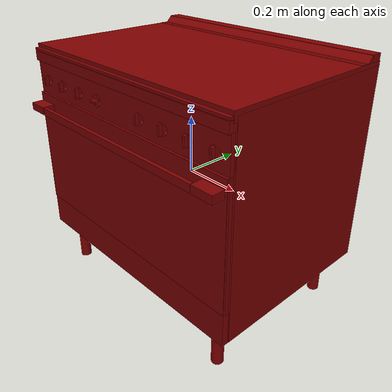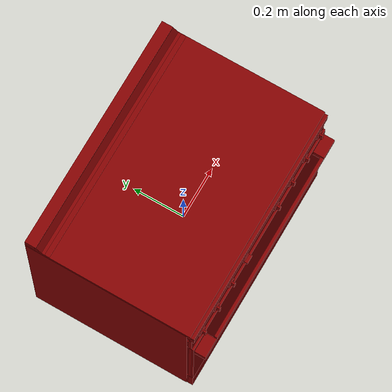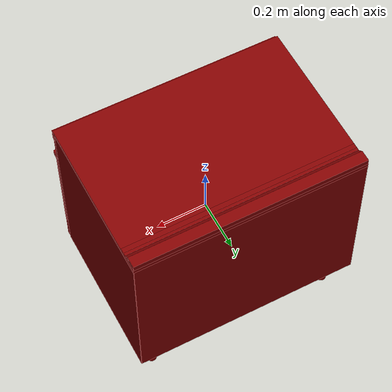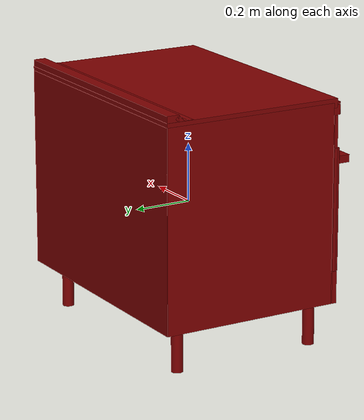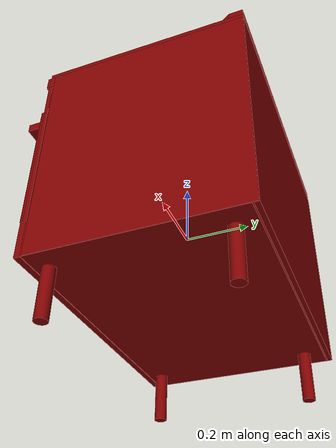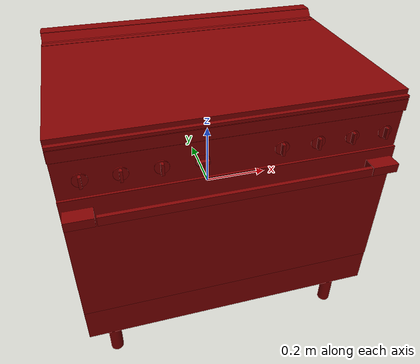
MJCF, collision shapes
<?xml version='1.0' encoding='UTF-8'?>
<mujoco model="model">
  <option timestep="0.002" gravity="0.0 0.0 -9.81"/>
  <compiler angle="radian"/>
  <asset>
    <mesh file="visuals/door.obj" name="door_vis"/>
    <mesh file="visuals/door_Clear.obj" name="door_Clear_vis"/>
    <mesh file="visuals/knob_front_center.obj" name="knob_front_center_vis"/>
    <mesh file="visuals/knob_front_left.obj" name="knob_front_left_vis"/>
    <mesh file="visuals/knob_front_right.obj" name="knob_front_right_vis"/>
    <mesh file="visuals/knob_rear_center.obj" name="knob_rear_center_vis"/>
    <mesh file="visuals/knob_rear_left.obj" name="knob_rear_left_vis"/>
    <mesh file="visuals/knob_rear_right.obj" name="knob_rear_right_vis"/>
    <mesh file="visuals/knob_temp.obj" name="knob_temp_vis"/>
    <mesh file="visuals/knob_time.obj" name="knob_time_vis"/>
    <mesh file="visuals/rack0.obj" name="rack0_vis"/>
    <mesh file="visuals/Body001.obj" name="Body001_vis"/>
    <texture file="visuals/T_BC001.png" name="Body001_material" type="2d"/>
    <material name="Body001_material" rgba="1 1 1 1.0" texture="Body001_material" shininess="0.1" specular="4"/>
    <texture file="visuals/T_BC001.png" name="door_material" type="2d"/>
    <material name="door_material" rgba="1 1 1 1.0" texture="door_material" shininess="0.1" specular="4"/>
    <texture file="visuals/T_BC001.png" name="door_Clear_material" type="2d"/>
    <material name="door_Clear_material" rgba="1 1 1 0.8" texture="door_Clear_material" shininess="0.1" specular="0.3103448502657381"/>
    <texture file="visuals/T_BC001.png" name="knob_front_center_material" type="2d"/>
    <material name="knob_front_center_material" rgba="1 1 1 1.0" texture="knob_front_center_material" shininess="0.1" specular="4"/>
    <texture file="visuals/T_BC001.png" name="knob_front_left_material" type="2d"/>
    <material name="knob_front_left_material" rgba="1 1 1 1.0" texture="knob_front_left_material" shininess="0.1" specular="4"/>
    <texture file="visuals/T_BC001.png" name="knob_front_right_material" type="2d"/>
    <material name="knob_front_right_material" rgba="1 1 1 1.0" texture="knob_front_right_material" shininess="0.1" specular="4"/>
    <texture file="visuals/T_BC001.png" name="knob_rear_center_material" type="2d"/>
    <material name="knob_rear_center_material" rgba="1 1 1 1.0" texture="knob_rear_center_material" shininess="0.1" specular="4"/>
    <texture file="visuals/T_BC001.png" name="knob_rear_left_material" type="2d"/>
    <material name="knob_rear_left_material" rgba="1 1 1 1.0" texture="knob_rear_left_material" shininess="0.1" specular="4"/>
    <texture file="visuals/T_BC001.png" name="knob_rear_right_material" type="2d"/>
    <material name="knob_rear_right_material" rgba="1 1 1 1.0" texture="knob_rear_right_material" shininess="0.1" specular="4"/>
    <texture file="visuals/T_BC001.png" name="knob_temp_material" type="2d"/>
    <material name="knob_temp_material" rgba="1 1 1 1.0" texture="knob_temp_material" shininess="0.1" specular="4"/>
    <texture file="visuals/T_BC001.png" name="knob_time_material" type="2d"/>
    <material name="knob_time_material" rgba="1 1 1 1.0" texture="knob_time_material" shininess="0.1" specular="4"/>
    <texture file="visuals/T_BC001.png" name="rack0_material" type="2d"/>
    <material name="rack0_material" rgba="1 1 1 1.0" texture="rack0_material" shininess="0.1" specular="4"/>
  </asset>
  <default>
    <default class="visual">
      <geom conaffinity="0" contype="0" group="1" type="mesh"/>
    </default>
    <default class="collision">
      <geom group="0" rgba="0.5 0 0 0.5"/>
    </default>
    <default class="spawn">
      <geom group="0" rgba="1 1 1 0.5" contype="0" conaffinity="0"/>
      <site group="0" rgba="1 1 1 0.5"/>
    </default>
    <default class="region">
      <geom group="1" conaffinity="0" contype="0" rgba="0 1 0 0"/>
    </default>
  </default>
  <worldbody>
    <body>
      <body name="object">
        <geom mesh="Body001_vis" type="mesh" solimp="0.998 0.998 0.001" solref="0.001 1" friction="0.95 0.3 0.1" class="visual" material="Body001_material"/>
        <geom type="box" pos="0.0003183194203302264 -0.28642094135284424 0.3066258132457733" size="0.44811561703681946 0.006387270055711269 0.056631673127412796" quat="1.0 0.0 0.0 0.0" class="collision"/>
        <geom type="box" pos="-0.4419783055782318 0.033996328711509705 0.060405582189559937" size="0.00801508966833353 0.30922675132751465 0.340255469083786" quat="1.0 0.0 0.0 0.0" class="collision"/>
        <geom type="box" pos="0.0003183194203302264 -0.28804415464401245 0.37647104263305664" size="0.44811561703681946 0.01280302181839943 0.016130534932017326" quat="1.0 0.0 0.0 0.0" class="collision"/>
        <geom type="box" pos="0.0003183194203302264 -0.28804415464401245 0.39869219064712524" size="0.44811561703681946 0.012802627868950367 0.003743794048205018" quat="1.0 0.0 0.0 0.0" class="collision"/>
        <geom type="cylinder" pos="-0.3744167685508728 -0.23877112567424774 -0.3571068346500397" size="0.01991221494972706 0.07708404213190079" quat="1.0 0.0 0.0 0.0" class="collision"/>
        <geom type="cylinder" pos="-0.3744167685508728 0.26553860306739807 -0.3571068346500397" size="0.01991221494972706 0.07708404213190079" quat="1.0 0.0 0.0 0.0" class="collision"/>
        <geom type="cylinder" pos="0.3746106028556824 -0.23877112567424774 -0.3571068346500397" size="0.01991221494972706 0.07708404213190079" quat="1.0 0.0 0.0 0.0" class="collision"/>
        <geom type="cylinder" pos="0.3746106028556824 0.26553860306739807 -0.3571068346500397" size="0.01991221494972706 0.07708404213190079" quat="1.0 0.0 0.0 0.0" class="collision"/>
        <geom type="box" pos="0.0003183194203302264 -0.28804415464401245 0.39869219064712524" size="0.44811561703681946 0.012802643701434135 0.003743794048205018" quat="1.0 0.0 0.0 0.0" class="collision"/>
        <geom type="box" pos="-2.839036642399151e-05 0.29543256759643555 0.4189581274986267" size="0.4483974277973175 0.008444877341389656 0.015956154093146324" quat="0.9272530674934387 -0.3744352459907532 -8.31413328834686e-17 6.67813433644559e-24" class="collision"/>
        <geom type="box" pos="-2.839036642399151e-05 0.27162104845046997 0.4044416844844818" size="0.4483974277973175 0.008444877341389656 0.011302200146019459" quat="1.0 0.0 0.0 0.0" class="collision"/>
        <geom type="box" pos="-2.839036642399151e-05 0.005259230732917786 0.37645041942596436" size="0.4483974277973175 0.3050737977027893 0.017155971378087997" quat="1.0 0.0 0.0 0.0" class="collision"/>
        <geom type="box" pos="-2.839036642399151e-05 0.2586402893066406 0.4127400517463684" size="0.4483974277973175 0.009496590122580528 0.003208995796740055" quat="1.0 0.0 0.0 0.0" class="collision"/>
        <geom type="box" pos="5.867400250281207e-05 0.027640582993626595 0.399312287569046" size="0.44977715611457825 0.3162645995616913 0.015725871548056602" quat="1.0 0.0 0.0 0.0" class="collision"/>
        <geom type="box" pos="-0.4295627176761627 0.013458820059895515 0.04660617560148239" size="0.0053916811011731625 0.2821773886680603 0.005863811355084181" quat="1.0 0.0 0.0 0.0" class="collision"/>
        <geom type="box" pos="0.4289887547492981 0.013458820059895515 0.04660617560148239" size="0.0053916811011731625 0.2821773886680603 0.005863804370164871" quat="1.0 0.0 0.0 0.0" class="collision"/>
        <geom type="box" pos="0.00031825207406654954 -0.288605272769928 -0.22573333978652954" size="0.44802048802375793 0.01008778065443039 0.05535578727722168" quat="1.0 0.0 0.0 0.0" class="collision"/>
        <geom type="box" pos="0.00031825172482058406 0.02260882966220379 -0.2260150909423828" size="0.44802048802375793 0.30385076999664307 0.05408777296543121" quat="1.0 0.0 0.0 0.0" class="collision"/>
        <geom type="box" pos="0.00031825207406654954 0.0015656724572181702 0.29436567425727844" size="0.44801947474479675 0.2823822498321533 0.03429925814270973" quat="1.0 0.0 0.0 0.0" class="collision"/>
        <geom type="box" pos="-2.839036642399151e-05 0.3225093483924866 0.41445428133010864" size="0.4483974277973175 0.02128090336918831 0.02307649329304695" quat="1.0 0.0 0.0 0.0" class="collision"/>
        <geom type="box" pos="0.44094550609588623 0.03429124504327774 0.060405582189559937" size="0.00904814526438713 0.3095216751098633 0.340255469083786" quat="1.0 0.0 0.0 0.0" class="collision"/>
        <geom type="box" pos="-2.839036642399151e-05 0.33732932806015015 0.06022652983665466" size="0.4483974277973175 0.00725642079487443 0.34026357531547546" quat="1.0 0.0 0.0 0.0" class="collision"/>
        <geom type="box" pos="-0.14961594343185425 -0.0010684896260499954 0.38062411546707153" size="0.012458601966500282 0.27348652482032776 0.003292800858616829" quat="1.0 0.0 0.0 0.0" class="collision"/>
        <geom type="box" pos="0.15233862400054932 -0.0010684896260499954 0.38062411546707153" size="0.012458601966500282 0.27348652482032776 0.003292800858616829" quat="1.0 0.0 0.0 0.0" class="collision"/>
        <body name="door">
          <joint axis="1.0 0.0 0.0" pos="1.6003488781279884e-05 -0.30117088556289673 -0.16926056146621704" limited="true" name="door_joint" range="0.0 1.5707963267948966" type="hinge" damping="1" frictionloss="1" armature=".01" stiffness="0.05"/>
          <geom mesh="door_vis" type="mesh" solimp="0.998 0.998 0.001" solref="0.001 1" friction="0.95 0.3 0.1" class="visual" material="door_material"/>
          <geom type="box" pos="0.00031825207406654954 -0.2903957962989807 0.04010045528411865" size="0.4480094909667969 0.010087285190820694 0.20861175656318665" quat="1.0 0.0 0.0 0.0" class="collision"/>
          <geom type="box" pos="-0.40515023469924927 -0.3214207887649536 0.20637446641921997" size="0.03733780235052109 0.02165932022035122 0.012895843014121056" quat="1.0 0.0 0.0 0.0" class="collision"/>
          <geom type="box" pos="0.4033749997615814 -0.3214207887649536 0.20637446641921997" size="0.03733780235052109 0.02165932022035122 0.012895843014121056" quat="1.0 0.0 0.0 0.0" class="collision"/>
          <geom class="collision" type="box" pos="-5.924701440562785e-08 -0.336945116519928 0.20637446641921997" size="0.36374518275260925 0.005712307523936033 0.012895872816443443" quat="1.0 0.0 0.0 0.0" name="door_handle_main"/>
          <geom class="collision" type="box" pos="0.00031825207406654954 -0.2957878112792969 0.04010045528411865" size="0.4480096995830536 0.0032571235205978155 0.2086118459701538" quat="1.0 0.0 0.0 0.0" name="door_main"/>
          <body name="door_Clear">
            <geom mesh="door_Clear_vis" type="mesh" solimp="0.998 0.998 0.001" solref="0.001 1" friction="0.95 0.3 0.1" class="visual" material="door_Clear_material"/>
            <geom type="box" pos="0.00031825207406654954 -0.2903957962989807 0.04010045528411865" size="0.34480345249176025 0.00791058037430048 0.15141569077968597" quat="1.0 0.0 0.0 0.0" class="collision"/>
          </body>
        </body>
        <body name="knob_front_center">
          <joint axis="0.0 -1.0 0.0" pos="-0.19469787180423737 -0.3017273545265198 0.301645964384079" limited="true" name="knob_front_center_joint" range="0.0 3.141592653589793" type="hinge" damping="0.05" armature="1" frictionloss="0.75"/>
          <geom mesh="knob_front_center_vis" type="mesh" solimp="0.998 0.998 0.001" solref="0.001 1" friction="0.95 0.3 0.1" class="visual" material="knob_front_center_material"/>
          <geom type="cylinder" pos="-0.1951352059841156 -0.29879969358444214 0.3022266626358032" size="0.01890557073056698 0.0015580850886180997" quat="0.7071068286895752 0.7071067690849304 -1.5700922994638892e-16 -1.528541381711287e-23" class="collision" friction="100 0.5 0.01"/>
          <geom type="box" pos="-0.1951352059841156 -0.30606502294540405 0.3022266626358032" size="0.0036322420928627253 0.006429062224924564 0.015848379582166672" quat="1.0 0.0 0.0 0.0" class="collision" name="knob_front_center_main" friction="100 0.5 0.01"/>
        </body>
        <body name="knob_front_left">
          <joint axis="0.0 -1.0 0.0" pos="-0.3865200877189636 -0.30172741413116455 0.301645964384079" limited="true" name="knob_front_left_joint" range="0.0 3.141592653589793" type="hinge" damping="0.05" armature="1" frictionloss="0.75"/>
          <geom mesh="knob_front_left_vis" type="mesh" solimp="0.998 0.998 0.001" solref="0.001 1" friction="0.95 0.3 0.1" class="visual" material="knob_front_left_material"/>
          <geom type="cylinder" pos="-0.386327862739563 -0.29879969358444214 0.3022266626358032" size="0.01890557073056698 0.0015580850886180997" quat="0.7071068286895752 0.7071067690849304 -1.5700922994638892e-16 -1.528541381711287e-23" class="collision" friction="100 0.5 0.01"/>
          <geom type="box" pos="-0.386327862739563 -0.30606502294540405 0.3022266626358032" size="0.0036322488449513912 0.006429074332118034 0.015848379582166672" quat="1.0 0.0 0.0 0.0" class="collision" name="knob_front_left_main" friction="100 0.5 0.01"/>
        </body>
        <body name="knob_front_right">
          <joint axis="0.0 -1.0 0.0" pos="0.40290167927742004 -0.3017273545265198 0.301645964384079" limited="true" name="knob_front_right_joint" range="0.0 3.141592653589793" type="hinge" damping="0.05" armature="1" frictionloss="0.75"/>
          <geom mesh="knob_front_right_vis" type="mesh" solimp="0.998 0.998 0.001" solref="0.001 1" friction="0.95 0.3 0.1" class="visual" material="knob_front_right_material"/>
          <geom type="cylinder" pos="0.4029926061630249 -0.29879969358444214 0.3022266626358032" size="0.01890557073056698 0.0015580850886180997" quat="0.7071068286895752 0.7071067690849304 -1.5700922994638892e-16 -1.528541381711287e-23" class="collision" friction="100 0.5 0.01"/>
          <geom type="box" pos="0.4029926061630249 -0.30606502294540405 0.3022266626358032" size="0.0036322246305644512 0.006429031491279602 0.015848379582166672" quat="1.0 0.0 0.0 0.0" class="collision" name="knob_front_right_main" friction="100 0.5 0.01"/>
        </body>
        <body name="knob_rear_center">
          <joint axis="0.0 -1.0 0.0" pos="0.21064899861812592 -0.3017273545265198 0.301645964384079" limited="true" name="knob_rear_center_joint" range="0.0 3.141592653589793" type="hinge" damping="0.05" armature="1" frictionloss="0.75"/>
          <geom mesh="knob_rear_center_vis" type="mesh" solimp="0.998 0.998 0.001" solref="0.001 1" friction="0.95 0.3 0.1" class="visual" material="knob_rear_center_material"/>
          <geom type="cylinder" pos="0.21057800948619843 -0.29879969358444214 0.3022266626358032" size="0.01890557073056698 0.0015580850886180997" quat="0.7071068286895752 0.7071067690849304 -1.5700922994638892e-16 -1.528541381711287e-23" class="collision" friction="100 0.5 0.01"/>
          <geom type="box" pos="0.21057800948619843 -0.30606502294540405 0.3022266626358032" size="0.003632231615483761 0.006429043598473072 0.015848379582166672" quat="1.0 0.0 0.0 0.0" class="collision" name="knob_rear_center_main" friction="100 0.5 0.01"/>
        </body>
        <body name="knob_rear_left">
          <joint axis="0.0 -1.0 0.0" pos="-0.2925790548324585 -0.30172741413116455 0.301645964384079" limited="true" name="knob_rear_left_joint" range="0.0 3.141592653589793" type="hinge" damping="0.05" armature="1" frictionloss="0.75"/>
          <geom mesh="knob_rear_left_vis" type="mesh" solimp="0.998 0.998 0.001" solref="0.001 1" friction="0.95 0.3 0.1" class="visual" material="knob_rear_left_material"/>
          <geom type="cylinder" pos="-0.2925601005554199 -0.29879969358444214 0.3022266626358032" size="0.01890557073056698 0.0015580850886180997" quat="0.7071068286895752 0.7071067690849304 -1.5700922994638892e-16 -1.528541381711287e-23" class="collision" friction="100 0.5 0.01"/>
          <geom type="box" pos="-0.2925601005554199 -0.30606502294540405 0.3022266626358032" size="0.0036322453524917364 0.006429068278521299 0.015848379582166672" quat="1.0 0.0 0.0 0.0" class="collision" name="knob_rear_left_main" friction="100 0.5 0.01"/>
        </body>
        <body name="knob_rear_right">
          <joint axis="0.0 -1.0 0.0" pos="0.30732953548431396 -0.3017273545265198 0.301645964384079" limited="true" name="knob_rear_right_joint" range="0.0 3.141592653589793" type="hinge" damping="0.05" armature="1" frictionloss="0.75"/>
          <geom mesh="knob_rear_right_vis" type="mesh" solimp="0.998 0.998 0.001" solref="0.001 1" friction="0.95 0.3 0.1" class="visual" material="knob_rear_right_material"/>
          <geom type="cylinder" pos="0.3073394298553467 -0.29879969358444214 0.3022266626358032" size="0.01890557073056698 0.0015580850886180997" quat="0.7071068286895752 0.7071067690849304 -1.5700922994638892e-16 -1.528541381711287e-23" class="collision" friction="100 0.5 0.01"/>
          <geom type="box" pos="0.3073394298553467 -0.30606502294540405 0.3022266626358032" size="0.003632228123024106 0.006429037544876337 0.015848379582166672" quat="1.0 0.0 0.0 0.0" class="collision" name="knob_rear_right_main" friction="100 0.5 0.01"/>
        </body>
        <body name="knob_temp">
          <joint axis="0.0 1.0 0.0" pos="0.1117519661784172 -0.3017273545265198 0.301645964384079" limited="true" name="knob_temp_joint" range="0.0 5.585053606381854" type="hinge" damping="0.05" armature="1" frictionloss="0.75"/>
          <geom mesh="knob_temp_vis" type="mesh" solimp="0.998 0.998 0.001" solref="0.001 1" friction="0.95 0.3 0.1" class="visual" material="knob_temp_material"/>
          <geom type="cylinder" pos="0.11163146048784256 -0.29879969358444214 0.3022266626358032" size="0.01890557073056698 0.0015580850886180997" quat="0.7071068286895752 0.7071067690849304 -1.5700922994638892e-16 -1.528541381711287e-23" class="collision" friction="100 0.5 0.01"/>
          <geom class="collision" type="box" pos="0.11163146048784256 -0.30606502294540405 0.3022266626358032" size="0.0036322351079434156 0.006429050117731094 0.015848379582166672" quat="1.0 0.0 0.0 0.0" name="knob_temp_main" friction="100 0.5 0.01"/>
        </body>
        <body name="knob_time">
          <joint axis="0.0 1.0 0.0" pos="-0.09589322656393051 -0.3017273545265198 0.301645964384079" limited="true" name="knob_time_joint" range="0.0 5.235987755982989" type="hinge" damping="0.05" armature="1" frictionloss="0.75"/>
          <geom mesh="knob_time_vis" type="mesh" solimp="0.998 0.998 0.001" solref="0.001 1" friction="0.95 0.3 0.1" class="visual" material="knob_time_material"/>
          <geom type="cylinder" pos="-0.09535486251115799 -0.29879969358444214 0.3022266626358032" size="0.01890557073056698 0.0015580850886180997" quat="0.7071068286895752 0.7071067690849304 -1.5700922994638892e-16 -1.528541381711287e-23" class="collision" friction="100 0.5 0.01"/>
          <geom class="collision" type="box" pos="-0.09492311626672745 -0.30606502294540405 0.3022266626358032" size="0.01584886573255062 0.006429056636989117 0.003632118459790945" quat="1.0 0.0 0.0 0.0" name="knob_time_main" friction="100 0.5 0.01"/>
        </body>
        <body name="rack0">
          <geom class="region" name="reg_rack0" type="box" pos="0.0013973116874694824 -0.005520448088645935 0.15303665027022362" size="0.39451165294647217 0.2593267241716385 0.09537564387917519"/>
          <joint axis="0.0 -1.0 0.0" pos="-0.0003713076584972441 -0.005892522633075714 0.054952144622802734" limited="true" name="rack0_joint" range="0.0 0.45" type="slide" damping="1" frictionloss="1" armature=".01" stiffness="0.05"/>
          <geom mesh="rack0_vis" type="mesh" solimp="0.998 0.998 0.001" solref="0.001 1" friction="0.95 0.3 0.1" class="visual" material="rack0_material"/>
          <geom type="box" pos="-0.0012634280137717724 -0.0033324453979730606 0.055273450911045074" size="0.4324003756046295 0.26650944352149963 0.0025144717656075954" quat="1.0 0.0 0.0 0.0" class="collision"/>
        </body>
        <site type="cylinder" rgba="0.3 0.4 1 0.5" size="0.05971946567296982 0.007904554717242718" pos="-0.30060824751853943 -0.14658205211162567 0.39735639095306396" name="burner_on_front_left"/>
        <site type="cylinder" rgba="0.3 0.4 1 0.5" size="0.03791730850934982 0.00790457148104906" pos="-0.3000487983226776 0.09335743635892868 0.3973563611507416" name="burner_on_rear_left"/>
        <site type="cylinder" rgba="0.3 0.4 1 0.5" size="0.03809259459376335 0.00790457148104906" pos="-0.0004834260616917163 0.0933624804019928 0.39735642075538635" name="burner_on_rear_center"/>
        <site type="cylinder" rgba="0.3 0.4 1 0.5" size="0.037788569927215576 0.00790457148104906" pos="0.3000544607639313 0.09336873888969421 0.39735642075538635" name="burner_on_rear_right"/>
        <site type="cylinder" rgba="0.3 0.4 1 0.5" size="0.037788569927215576 0.00790457148104906" pos="0.30006489157676697 -0.14707525074481964 0.39735642075538635" name="burner_on_front_right"/>
        <site type="cylinder" rgba="0.3 0.4 1 0.5" size="0.027299582958221436 0.00790457148104906" pos="-0.00040532328421249986 -0.14705835282802582 0.39735642075538635" name="burner_on_front_center"/>
        <geom class="region" name="reg_int" type="box" pos="-3.437697887420654e-05 0.025120288133621216 0.04067111760377884" size="0.4223528782129288 0.2989917824268341 0.20801124519109726"/>
        <site type="cylinder" rgba="0.5 0 0 0" size="0.027299582958221436 5.0000002374872565e-05" pos="-0.00040532328421249986 -0.14705835282802582 0.4150468111038208" name="burner_front_center_place_site"/>
        <site type="cylinder" rgba="0.5 0 0 0" size="0.05971946567296982 4.999999873689376e-05" pos="-0.30060824751853943 -0.14658205211162567 0.4150467813014984" name="burner_front_left_place_site"/>
        <site type="cylinder" rgba="0.5 0 0 0" size="0.037788569927215576 5.0000002374872565e-05" pos="0.30006489157676697 -0.14707525074481964 0.4150468111038208" name="burner_front_right_place_site"/>
        <site type="cylinder" rgba="0.5 0 0 0" size="0.03809259459376335 5.0000002374872565e-05" pos="-0.0004834260616917163 0.0933624804019928 0.4150468111038208" name="burner_rear_center_place_site"/>
        <site type="cylinder" rgba="0.5 0 0 0" size="0.03791730850934982 5.0000002374872565e-05" pos="-0.3000487983226776 0.09335743635892868 0.415046751499176" name="burner_rear_left_place_site"/>
        <site type="cylinder" rgba="0.5 0 0 0" size="0.037788569927215576 5.0000002374872565e-05" pos="0.3000544607639313 0.09336873888969421 0.4150468111038208" name="burner_rear_right_place_site"/>
        <geom class="region" name="reg_main" type="box" pos="0.0 0.02093745768070221 -0.010688215494155884" size="0.45099992847442627 0.3246485719680786 0.426681471824646"/>
      </body>
    </body>
  </worldbody>
  <actuator>
    <motor name="door_joint_actuator" joint="door_joint" gear="50"/>
    <motor name="knob_front_center_joint_actuator" joint="knob_front_center_joint" gear="50"/>
    <motor name="knob_front_left_joint_actuator" joint="knob_front_left_joint" gear="50"/>
    <motor name="knob_front_right_joint_actuator" joint="knob_front_right_joint" gear="50"/>
    <motor name="knob_rear_center_joint_actuator" joint="knob_rear_center_joint" gear="50"/>
    <motor name="knob_rear_left_joint_actuator" joint="knob_rear_left_joint" gear="50"/>
    <motor name="knob_rear_right_joint_actuator" joint="knob_rear_right_joint" gear="50"/>
    <motor name="knob_temp_joint_actuator" joint="knob_temp_joint" gear="50"/>
    <motor name="knob_time_joint_actuator" joint="knob_time_joint" gear="50"/>
    <motor name="rack0_joint_actuator" joint="rack0_joint" gear="50"/>
  </actuator>
</mujoco>
